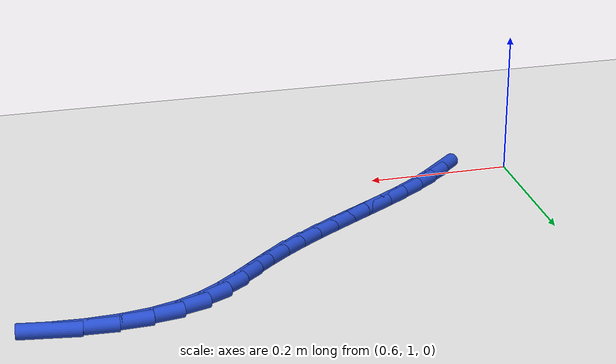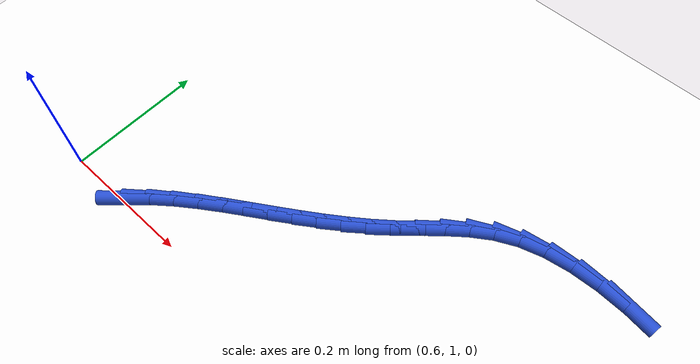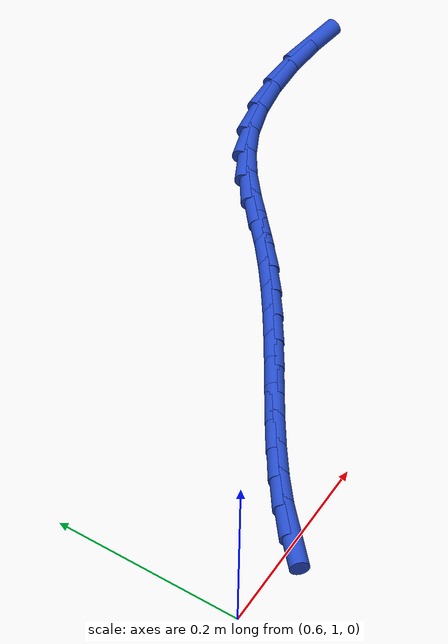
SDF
<sdf version="1.6">
 <world name="default">
  <model name="ground_plane">
   <static>1</static>
   <link name="link">
    <collision name="collision">
     <geometry><plane><normal>0 0 1</normal><size>100 100</size></plane></geometry>
     <surface><friction><ode><mu>100</mu><mu2>50</mu2></ode></friction></surface>
    </collision>
    <visual name="visual">
     <cast_shadows>0</cast_shadows>
     <geometry><plane><normal>0 0 1</normal><size>100 100</size></plane></geometry>
     <material>
      <script><uri>file://media/materials/scripts/gazebo.material</uri><name>Gazebo/WhiteGlow</name></script>
     </material>
    </visual>
   </link>
  </model>
  <model name="line">
   <link name="link_40">
    <pose>0.702057630298072 1.004937730161178 0.01 0 1.57 0.7462383159895453</pose>
    <collision name="collision">
     <geometry><cylinder><radius>0.01</radius><length>0.08</length></cylinder></geometry>
    </collision>
    <visual name="visual">
     <material>
      <script><name>Gazebo/Blue</name><uri>file://media/materials/scripts/gazebo.material</uri></script>
     </material>
     <geometry><cylinder><radius>0.01</radius><length>0.08</length></cylinder></geometry>
    </visual>
   </link>
   <link name="link_41">
    <pose>0.7264747625972505 1.0275136793175477 0.01 0 1.57 0.6774716742403745</pose>
    <collision name="collision">
     <geometry><cylinder><radius>0.01</radius><length>0.08</length></cylinder></geometry>
    </collision>
    <visual name="visual">
     <material>
      <script><name>Gazebo/Blue</name><uri>file://media/materials/scripts/gazebo.material</uri></script>
     </material>
     <geometry><cylinder><radius>0.01</radius><length>0.08</length></cylinder></geometry>
    </visual>
   </link>
   <link name="link_42">
    <pose>0.7528018352562678 1.0486934990481662 0.01 0 1.57 0.6257214159362816</pose>
    <collision name="collision">
     <geometry><cylinder><radius>0.01</radius><length>0.08</length></cylinder></geometry>
    </collision>
    <visual name="visual">
     <material>
      <script><name>Gazebo/Blue</name><uri>file://media/materials/scripts/gazebo.material</uri></script>
     </material>
     <geometry><cylinder><radius>0.01</radius><length>0.08</length></cylinder></geometry>
    </visual>
   </link>
   <link name="link_43">
    <pose>0.7805525042228462 1.0687456316567514 0.01 0 1.57 0.5896323464035661</pose>
    <collision name="collision">
     <geometry><cylinder><radius>0.01</radius><length>0.08</length></cylinder></geometry>
    </collision>
    <visual name="visual">
     <material>
      <script><name>Gazebo/Blue</name><uri>file://media/materials/scripts/gazebo.material</uri></script>
     </material>
     <geometry><cylinder><radius>0.01</radius><length>0.08</length></cylinder></geometry>
    </visual>
   </link>
   <link name="link_44">
    <pose>0.8092404254447071 1.087938519447021 0.01 0 1.57 0.5681737955948196</pose>
    <collision name="collision">
     <geometry><cylinder><radius>0.01</radius><length>0.08</length></cylinder></geometry>
    </collision>
    <visual name="visual">
     <material>
      <script><name>Gazebo/Blue</name><uri>file://media/materials/scripts/gazebo.material</uri></script>
     </material>
     <geometry><cylinder><radius>0.01</radius><length>0.08</length></cylinder></geometry>
    </visual>
   </link>
   <link name="link_45">
    <pose>0.8383792548695731 1.1065406047226938 0.01 0 1.57 0.5608223122984245</pose>
    <collision name="collision">
     <geometry><cylinder><radius>0.01</radius><length>0.08</length></cylinder></geometry>
    </collision>
    <visual name="visual">
     <material>
      <script><name>Gazebo/Blue</name><uri>file://media/materials/scripts/gazebo.material</uri></script>
     </material>
     <geometry><cylinder><radius>0.01</radius><length>0.08</length></cylinder></geometry>
    </visual>
   </link>
   <link name="link_46">
    <pose>0.8674826638000634 1.124820329600047 0.01 0 1.57 0.5664427880120331</pose>
    <collision name="collision">
     <geometry><cylinder><radius>0.01</radius><length>0.08</length></cylinder></geometry>
    </collision>
    <visual name="visual">
     <material>
      <script><name>Gazebo/Blue</name><uri>file://media/materials/scripts/gazebo.material</uri></script>
     </material>
     <geometry><cylinder><radius>0.01</radius><length>0.08</length></cylinder></geometry>
    </visual>
   </link>
   <link name="link_47">
    <pose>0.8961398863788326 1.1430452137835292 0.01 0 1.57 0.5814035614070694</pose>
    <collision name="collision">
     <geometry><cylinder><radius>0.01</radius><length>0.08</length></cylinder></geometry>
    </collision>
    <visual name="visual">
     <material>
      <script><name>Gazebo/Blue</name><uri>file://media/materials/scripts/gazebo.material</uri></script>
     </material>
     <geometry><cylinder><radius>0.01</radius><length>0.08</length></cylinder></geometry>
    </visual>
   </link>
   <link name="link_48">
    <pose>0.9241909599313513 1.1614797153692287 0.01 0 1.57 0.6051087265047465</pose>
    <collision name="collision">
     <geometry><cylinder><radius>0.01</radius><length>0.08</length></cylinder></geometry>
    </collision>
    <visual name="visual">
     <material>
      <script><name>Gazebo/Blue</name><uri>file://media/materials/scripts/gazebo.material</uri></script>
     </material>
     <geometry><cylinder><radius>0.01</radius><length>0.08</length></cylinder></geometry>
    </visual>
   </link>
   <link name="link_49">
    <pose>0.9515278891134051 1.180387658076864 0.01 0 1.57 0.6376613649610068</pose>
    <collision name="collision">
     <geometry><cylinder><radius>0.01</radius><length>0.08</length></cylinder></geometry>
    </collision>
    <visual name="visual">
     <material>
      <script><name>Gazebo/Blue</name><uri>file://media/materials/scripts/gazebo.material</uri></script>
     </material>
     <geometry><cylinder><radius>0.01</radius><length>0.08</length></cylinder></geometry>
    </visual>
   </link>
   <link name="link_50">
    <pose>0.9780426785807792 1.2000328656261534 0.01 0 1.57 0.678982375466499</pose>
    <collision name="collision">
     <geometry><cylinder><radius>0.01</radius><length>0.08</length></cylinder></geometry>
    </collision>
    <visual name="visual">
     <material>
      <script><name>Gazebo/Blue</name><uri>file://media/materials/scripts/gazebo.material</uri></script>
     </material>
     <geometry><cylinder><radius>0.01</radius><length>0.08</length></cylinder></geometry>
    </visual>
   </link>
   <link name="link_51">
    <pose>1.0036273329892578 1.2206791617368147 0.01 0 1.57 0.724320663329092</pose>
    <collision name="collision">
     <geometry><cylinder><radius>0.01</radius><length>0.08</length></cylinder></geometry>
    </collision>
    <visual name="visual">
     <material>
      <script><name>Gazebo/Blue</name><uri>file://media/materials/scripts/gazebo.material</uri></script>
     </material>
     <geometry><cylinder><radius>0.01</radius><length>0.08</length></cylinder></geometry>
    </visual>
   </link>
   <link name="link_52">
    <pose>1.0282662865121477 1.242478262780542 0.01 0 1.57 0.7353628677841164</pose>
    <collision name="collision">
     <geometry><cylinder><radius>0.01</radius><length>0.08</length></cylinder></geometry>
    </collision>
    <visual name="visual">
     <material>
      <script><name>Gazebo/Blue</name><uri>file://media/materials/scripts/gazebo.material</uri></script>
     </material>
     <geometry><cylinder><radius>0.01</radius><length>0.08</length></cylinder></geometry>
    </visual>
   </link>
   <link name="link_53">
    <pose>1.0527393690378004 1.2646171532269688 0.01 0 1.57 0.6931060324528824</pose>
    <collision name="collision">
     <geometry><cylinder><radius>0.01</radius><length>0.08</length></cylinder></geometry>
    </collision>
    <visual name="visual">
     <material>
      <script><name>Gazebo/Blue</name><uri>file://media/materials/scripts/gazebo.material</uri></script>
     </material>
     <geometry><cylinder><radius>0.01</radius><length>0.08</length></cylinder></geometry>
    </visual>
   </link>
   <link name="link_54">
    <pose>1.0782321359848495 1.2857907148663508 0.01 0 1.57 0.598713805281445</pose>
    <collision name="collision">
     <geometry><cylinder><radius>0.01</radius><length>0.08</length></cylinder></geometry>
    </collision>
    <visual name="visual">
     <material>
      <script><name>Gazebo/Blue</name><uri>file://media/materials/scripts/gazebo.material</uri></script>
     </material>
     <geometry><cylinder><radius>0.01</radius><length>0.08</length></cylinder></geometry>
    </visual>
   </link>
   <link name="link_55">
    <pose>1.1059333835745753 1.3046898987339175 0.01 0 1.57 0.4576228024317589</pose>
    <collision name="collision">
     <geometry><cylinder><radius>0.01</radius><length>0.08</length></cylinder></geometry>
    </collision>
    <visual name="visual">
     <material>
      <script><name>Gazebo/Blue</name><uri>file://media/materials/scripts/gazebo.material</uri></script>
     </material>
     <geometry><cylinder><radius>0.01</radius><length>0.08</length></cylinder></geometry>
    </visual>
   </link>
   <link name="link_56">
    <pose>1.137031906055083 1.3200056573249026 0.01 0 1.57 0.2942016544670733</pose>
    <collision name="collision">
     <geometry><cylinder><radius>0.01</radius><length>0.08</length></cylinder></geometry>
    </collision>
    <visual name="visual">
     <material>
      <script><name>Gazebo/Blue</name><uri>file://media/materials/scripts/gazebo.material</uri></script>
     </material>
     <geometry><cylinder><radius>0.01</radius><length>0.08</length></cylinder></geometry>
    </visual>
   </link>
   <link name="link_57">
    <pose>1.1723435590150244 1.3307048893899986 0.01 0 1.57 0.15534807357436317</pose>
    <collision name="collision">
     <geometry><cylinder><radius>0.01</radius><length>0.08</length></cylinder></geometry>
    </collision>
    <visual name="visual">
     <material>
      <script><name>Gazebo/Blue</name><uri>file://media/materials/scripts/gazebo.material</uri></script>
     </material>
     <geometry><cylinder><radius>0.01</radius><length>0.08</length></cylinder></geometry>
    </visual>
   </link>
   <link name="link_58">
    <pose>1.2112697057273034 1.3368011104572703 0.01 0 1.57 0.042151408269883624</pose>
    <collision name="collision">
     <geometry><cylinder><radius>0.01</radius><length>0.08</length></cylinder></geometry>
    </collision>
    <visual name="visual">
     <material>
      <script><name>Gazebo/Blue</name><uri>file://media/materials/scripts/gazebo.material</uri></script>
     </material>
     <geometry><cylinder><radius>0.01</radius><length>0.08</length></cylinder></geometry>
    </visual>
   </link>
   <link name="link_59">
    <pose>1.2528764114338462 1.338555931106789 0.01 0 1.57 -0.05357706445981691</pose>
    <collision name="collision">
     <geometry><cylinder><radius>0.01</radius><length>0.08</length></cylinder></geometry>
    </collision>
    <visual name="visual">
     <material>
      <script><name>Gazebo/Blue</name><uri>file://media/materials/scripts/gazebo.material</uri></script>
     </material>
     <geometry><cylinder><radius>0.01</radius><length>0.08</length></cylinder></geometry>
    </visual>
   </link>
   <link name="link_60">
    <pose>1.2962297413765793 1.3362309619186254 0.01 0 1.57 -0.1382054735538119</pose>
    <collision name="collision">
     <geometry><cylinder><radius>0.01</radius><length>0.08</length></cylinder></geometry>
    </collision>
    <visual name="visual">
     <material>
      <script><name>Gazebo/Blue</name><uri>file://media/materials/scripts/gazebo.material</uri></script>
     </material>
     <geometry><cylinder><radius>0.01</radius><length>0.08</length></cylinder></geometry>
    </visual>
   </link>
  </model>
 </world>
</sdf>
